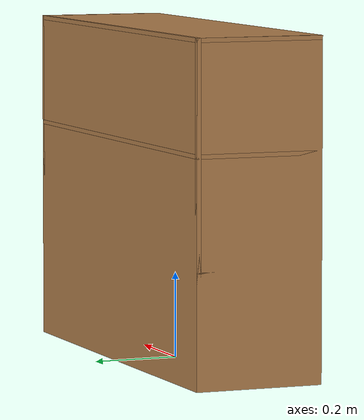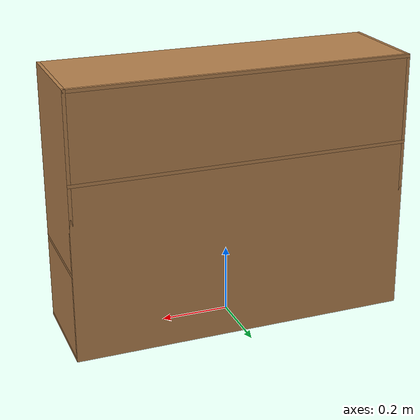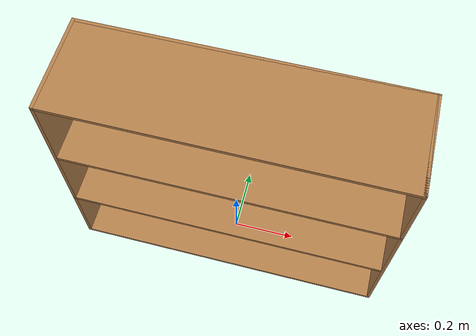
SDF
<?xml version="1.0" ?>

<sdf version="1.7">
<model name="bookshelf">
	<static>true</static>
	<link name="link">
		<collision name="back">
			<pose>0 0.145 0.39 1.5708 0 0</pose>
			<geometry>
				<box>
					<size>1 0.78 0.01</size>
				</box>
			</geometry>
		</collision>
		<visual name="back">
			<pose>0 0.145 0.39 1.5708 0 0</pose>
			<geometry>
				<box>
					<size>1 0.78 0.01</size>
				</box>
			</geometry>
			<material>
				<script>
					<uri>file://media/materials/scripts/gazebo.material</uri>
					<name>Gazebo/Wood</name>
				</script>
			</material>
		</visual>

		<collision name="left">
			<pose>-0.495 0 0.39 0 1.5708 0</pose>
			<geometry>
				<box>
					<size>0.78 0.3 0.01</size>
				</box>
			</geometry>
		</collision>
		<visual name="left">
			<pose>-0.495 0 0.39 0 1.5708 0</pose>
			<geometry>
				<box>
					<size>0.78 0.3 0.01</size>
				</box>
			</geometry>
			<material>
				<script>
					<uri>file://media/materials/scripts/gazebo.material</uri>
					<name>Gazebo/Wood</name>
				</script>
			</material>
		</visual>

		<collision name="right">
			<pose>0.495 0 0.39 0 1.5708 0</pose>
			<geometry>
				<box>
					<size>0.78 0.3 0.01</size>
				</box>
			</geometry>
		</collision>
		<visual name="right">
			<pose>0.495 0 0.39 0 1.5708 0</pose>
			<geometry>
				<box>
					<size>0.78 0.3 0.01</size>
				</box>
			</geometry>
			<material>
				<script>
					<uri>file://media/materials/scripts/gazebo.material</uri>
					<name>Gazebo/Wood</name>
				</script>
			</material>
		</visual>

		<collision name="bottom">
			<pose>0 0 0.0.005 0 0 0</pose>
			<geometry>
				<box>
					<size>1 0.3 0.01</size>
				</box>
			</geometry>
		</collision>
		<visual name="bottom">
			<pose>0 0 0.005 0 0 0</pose>
			<geometry>
				<box>
					<size>1 0.3 0.01</size>
				</box>
			</geometry>
			<material>
				<script>
					<uri>file://media/materials/scripts/gazebo.material</uri>
					<name>Gazebo/Wood</name>
				</script>
			</material>
		</visual>

		<collision name="top">
			<pose>0 0 0.775 0 0 0</pose>
			<geometry>
				<box>
					<size>1 0.3 0.01</size>
				</box>
			</geometry>
		</collision>
		<visual name="top">
			<pose>0 0 0.775 0 0 0</pose>
			<geometry>
				<box>
					<size>1 0.3 0.01</size>
				</box>
			</geometry>
			<material>
				<script>
					<uri>file://media/materials/scripts/gazebo.material</uri>
					<name>Gazebo/Wood</name>
				</script>
			</material>
		</visual>

		<collision name="shelf_1">
			<pose>0 0 0.26 0 0 0</pose>
			<geometry>
				<box>
					<size>1 0.3 0.01</size>
				</box>
			</geometry>
		</collision>
		<visual name="shelf_1">
			<pose>0 0 0.26 0 0 0</pose>
			<geometry>
				<box>
					<size>1 0.3 0.01</size>
				</box>
			</geometry>
			<material>
				<script>
					<uri>file://media/materials/scripts/gazebo.material</uri>
					<name>Gazebo/Wood</name>
				</script>
			</material>
		</visual>

		<collision name="shelf_2">
			<pose>0 0 0.52 0 0 0</pose>
			<geometry>
				<box>
					<size>1 0.3 0.01</size>
				</box>
			</geometry>
		</collision>
		<visual name="shelf_2">
			<pose>0 0 0.52 0 0 0</pose>
			<geometry>
				<box>
					<size>1 0.3 0.01</size>
				</box>
			</geometry>
			<material>
				<script>
					<uri>file://media/materials/scripts/gazebo.material</uri>
					<name>Gazebo/Wood</name>
				</script>
			</material>
		</visual>

	</link>
	</model>
</sdf>
